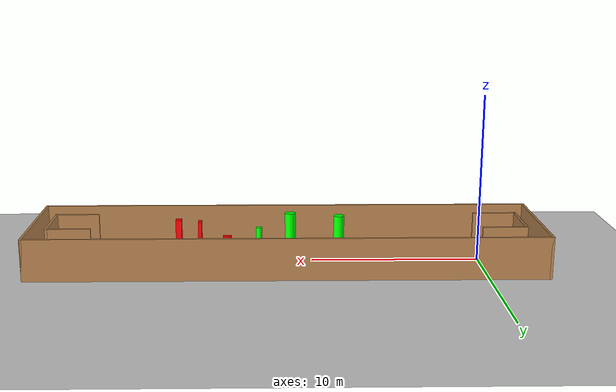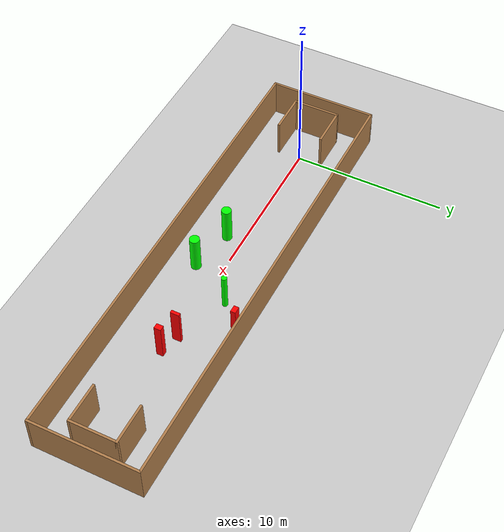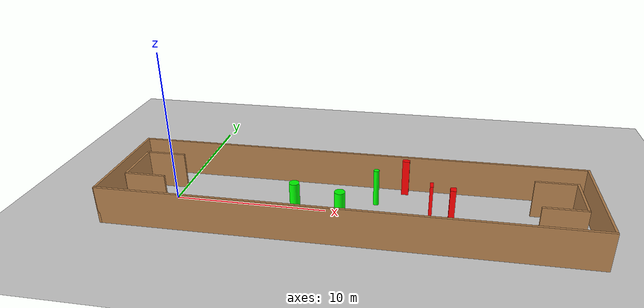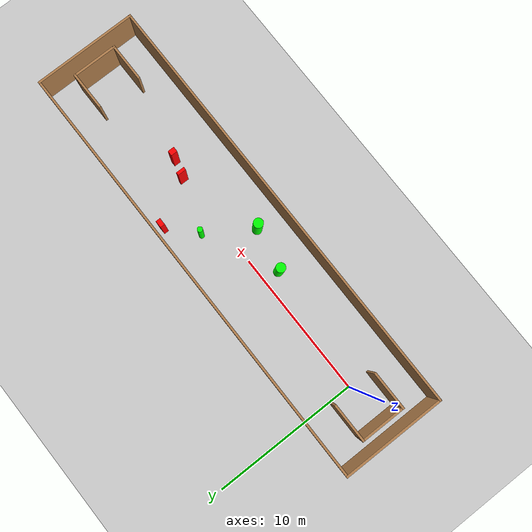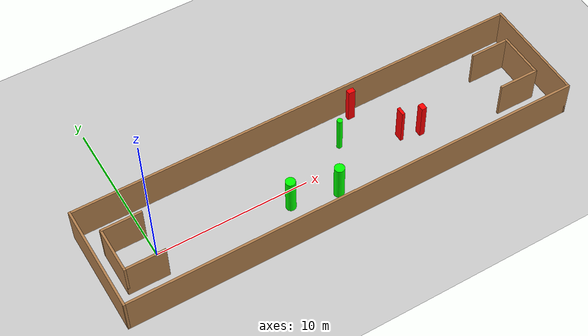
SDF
<sdf version="1.7">
 <world name="default">
  <light name="sun" type="directional">
   <pose>0 0 10 0 -0 0</pose>
   <diffuse>0.8 0.8 0.8 1</diffuse>
   <specular>0.2 0.2 0.2 1</specular>
   <attenuation>
    <range>1000</range>
    <constant>0.9</constant>
    <linear>0.01</linear>
    <quadratic>0.001</quadratic>
   </attenuation>
   <direction>-0.5 0.1 -0.9</direction>
   <spot><inner_angle>0</inner_angle><outer_angle>0</outer_angle><falloff>0</falloff></spot>
  </light>
  <model name="ground_plane">
   <static>1</static>
   <link name="link">
    <collision name="collision">
     <geometry><plane><normal>0 0 1</normal><size>100 100</size></plane></geometry>
     <surface>
      <contact><collide_bitmask>65535</collide_bitmask></contact>
      <friction><ode><mu>100</mu><mu2>50</mu2></ode></friction>
     </surface>
    </collision>
    <visual name="visual">
     <cast_shadows>0</cast_shadows>
     <geometry><plane><normal>0 0 1</normal><size>100 100</size></plane></geometry>
     <material>
      <script><uri>file://media/materials/scripts/gazebo.material</uri><name>Gazebo/Grey</name></script>
     </material>
    </visual>
   </link>
  </model>
  <gravity>0 0 -9.8</gravity>
  <magnetic_field>6e-06 2.3e-05 -4.2e-05</magnetic_field>
  <atmosphere type="adiabatic"/>
  <physics type="ode">
   <max_step_size>0.001</max_step_size>
   <real_time_factor>1</real_time_factor>
   <real_time_update_rate>1000</real_time_update_rate>
  </physics>
  <scene><ambient>0.4 0.4 0.4 1</ambient><background>0.7 0.7 0.7 1</background><shadows>1</shadows></scene>
  <spherical_coordinates>
   <surface_model>EARTH_WGS84</surface_model>
   <latitude_deg>0</latitude_deg>
   <longitude_deg>0</longitude_deg>
   <elevation>0</elevation>
   <heading_deg>0</heading_deg>
  </spherical_coordinates>
  <model name="my_base_walls">
   <link name="Wall_0">
    <collision name="Wall_0_Collision">
     <geometry><box><size>7.15 0.15 2.5</size></box></geometry>
     <pose>0 0 1.25 0 -0 0</pose>
    </collision>
    <visual name="Wall_0_Visual">
     <pose>0 0 1.25 0 -0 0</pose>
     <geometry><box><size>7.15 0.15 2.5</size></box></geometry>
     <material>
      <script><uri>file://media/materials/scripts/gazebo.material</uri><name>Gazebo/Wood</name></script>
      <ambient>1 1 1 1</ambient>
     </material>
     <meta><layer>0</layer></meta>
    </visual>
    <pose>-15 0 0 0 -0 1.5708</pose>
   </link>
   <link name="Wall_10">
    <collision name="Wall_10_Collision">
     <geometry><box><size>2.65 0.15 2.5</size></box></geometry>
     <pose>0 0 1.25 0 -0 0</pose>
    </collision>
    <visual name="Wall_10_Visual">
     <pose>0 0 1.25 0 -0 0</pose>
     <geometry><box><size>2.65 0.15 2.5</size></box></geometry>
     <material>
      <script><uri>file://media/materials/scripts/gazebo.material</uri><name>Gazebo/Wood</name></script>
      <ambient>1 1 1 1</ambient>
     </material>
     <meta><layer>0</layer></meta>
    </visual>
    <pose>-12.75 -1.5 0 0 -0 0</pose>
   </link>
   <link name="Wall_12">
    <collision name="Wall_12_Collision">
     <geometry><box><size>2.65 0.15 2.5</size></box></geometry>
     <pose>0 0 1.25 0 -0 0</pose>
    </collision>
    <visual name="Wall_12_Visual">
     <pose>0 0 1.25 0 -0 0</pose>
     <geometry><box><size>2.65 0.15 2.5</size></box></geometry>
     <material>
      <script><uri>file://media/materials/scripts/gazebo.material</uri><name>Gazebo/Wood</name></script>
      <ambient>1 1 1 1</ambient>
     </material>
     <meta><layer>0</layer></meta>
    </visual>
    <pose>-12.75 1.5 0 0 -0 0</pose>
   </link>
   <link name="Wall_14">
    <collision name="Wall_14_Collision">
     <geometry><box><size>3.15 0.15 2.5</size></box></geometry>
     <pose>0 0 1.25 0 -0 0</pose>
    </collision>
    <visual name="Wall_14_Visual">
     <pose>0 0 1.25 0 -0 0</pose>
     <geometry><box><size>3.15 0.15 2.5</size></box></geometry>
     <material>
      <script><uri>file://media/materials/scripts/gazebo.material</uri><name>Gazebo/Wood</name></script>
      <ambient>1 1 1 1</ambient>
     </material>
     <meta><layer>0</layer></meta>
    </visual>
    <pose>14 0 0 0 -0 -1.5708</pose>
   </link>
   <link name="Wall_15">
    <collision name="Wall_15_Collision">
     <geometry><box><size>2.65 0.15 2.5</size></box></geometry>
     <pose>0 0 1.25 0 -0 0</pose>
    </collision>
    <visual name="Wall_15_Visual">
     <pose>0 0 1.25 0 -0 0</pose>
     <geometry><box><size>2.65 0.15 2.5</size></box></geometry>
     <material>
      <script><uri>file://media/materials/scripts/gazebo.material</uri><name>Gazebo/Wood</name></script>
      <ambient>1 1 1 1</ambient>
     </material>
     <meta><layer>0</layer></meta>
    </visual>
    <pose>12.75 -1.5 0 0 -0 3.14159</pose>
   </link>
   <link name="Wall_17">
    <collision name="Wall_17_Collision">
     <geometry><box><size>2.65 0.15 2.5</size></box></geometry>
     <pose>0 0 1.25 0 -0 0</pose>
    </collision>
    <visual name="Wall_17_Visual">
     <pose>0 0 1.25 0 -0 0</pose>
     <geometry><box><size>2.65 0.15 2.5</size></box></geometry>
     <material>
      <script><uri>file://media/materials/scripts/gazebo.material</uri><name>Gazebo/Wood</name></script>
      <ambient>1 1 1 1</ambient>
     </material>
     <meta><layer>0</layer></meta>
    </visual>
    <pose>12.75 1.5 0 0 -0 3.14159</pose>
   </link>
   <link name="Wall_2">
    <collision name="Wall_2_Collision">
     <geometry><box><size>30.15 0.15 2.5</size></box></geometry>
     <pose>0 0 1.25 0 -0 0</pose>
    </collision>
    <visual name="Wall_2_Visual">
     <pose>0 0 1.25 0 -0 0</pose>
     <geometry><box><size>30.15 0.15 2.5</size></box></geometry>
     <material>
      <script><uri>file://media/materials/scripts/gazebo.material</uri><name>Gazebo/Wood</name></script>
      <ambient>1 1 1 1</ambient>
     </material>
     <meta><layer>0</layer></meta>
    </visual>
    <pose>-0 -3.5 0 0 -0 0</pose>
   </link>
   <link name="Wall_4">
    <collision name="Wall_4_Collision">
     <geometry><box><size>30.15 0.15 2.5</size></box></geometry>
     <pose>0 0 1.25 0 -0 0</pose>
    </collision>
    <visual name="Wall_4_Visual">
     <pose>0 0 1.25 0 -0 0</pose>
     <geometry><box><size>30.15 0.15 2.5</size></box></geometry>
     <material>
      <script><uri>file://media/materials/scripts/gazebo.material</uri><name>Gazebo/Wood</name></script>
      <ambient>1 1 1 1</ambient>
     </material>
     <meta><layer>0</layer></meta>
    </visual>
    <pose>-0 3.5 0 0 -0 0</pose>
   </link>
   <link name="Wall_6">
    <collision name="Wall_6_Collision">
     <geometry><box><size>7.15 0.15 2.5</size></box></geometry>
     <pose>0 0 1.25 0 -0 0</pose>
    </collision>
    <visual name="Wall_6_Visual">
     <pose>0 0 1.25 0 -0 0</pose>
     <geometry><box><size>7.15 0.15 2.5</size></box></geometry>
     <material>
      <script><uri>file://media/materials/scripts/gazebo.material</uri><name>Gazebo/Wood</name></script>
      <ambient>1 1 1 1</ambient>
     </material>
     <meta><layer>0</layer></meta>
    </visual>
    <pose>15 0 0 0 -0 -1.5708</pose>
   </link>
   <link name="Wall_9">
    <collision name="Wall_9_Collision">
     <geometry><box><size>3.15 0.15 2.5</size></box></geometry>
     <pose>0 0 1.25 0 -0 0</pose>
    </collision>
    <visual name="Wall_9_Visual">
     <pose>0 0 1.25 0 -0 0</pose>
     <geometry><box><size>3.15 0.15 2.5</size></box></geometry>
     <material>
      <script><uri>file://media/materials/scripts/gazebo.material</uri><name>Gazebo/Wood</name></script>
      <ambient>1 1 1 1</ambient>
     </material>
     <meta><layer>0</layer></meta>
    </visual>
    <pose>-14 0 0 0 -0 -1.5708</pose>
   </link>
   <static>1</static>
   <pose>11.5 0 0 0 -0 0</pose>
  </model>
  <model name="cylinder1">
   <static>1</static>
   <link name="link">
    <inertial>
     <mass>1</mass>
     <inertia><ixx>0.5</ixx><ixy>0</ixy><ixz>0</ixz><iyy>0.5</iyy><iyz>0</iyz><izz>1</izz></inertia>
    </inertial>
    <collision name="collision">
     <geometry><cylinder><radius>0.326107516007814</radius><length>2.5</length></cylinder></geometry>
    </collision>
    <visual name="visual">
     <geometry><cylinder><radius>0.326107516007814</radius><length>2.5</length></cylinder></geometry>
     <material>
      <ambient>0 1 0 1</ambient>
      <diffuse>0 1 0 1</diffuse>
      <specular>0.1 0.1 0.1 1</specular>
      <emissive>0 0 0 0</emissive>
     </material>
    </visual>
   </link>
   <pose>11.266517895468368 -1.6592110116439498 1.25 0 0 0</pose>
  </model>
  <model name="cylinder2">
   <static>1</static>
   <link name="link">
    <inertial>
     <mass>1</mass>
     <inertia><ixx>0.5</ixx><ixy>0</ixy><ixz>0</ixz><iyy>0.5</iyy><iyz>0</iyz><izz>1</izz></inertia>
    </inertial>
    <collision name="collision">
     <geometry><cylinder><radius>0.31757478869519834</radius><length>2.5</length></cylinder></geometry>
    </collision>
    <visual name="visual">
     <geometry><cylinder><radius>0.31757478869519834</radius><length>2.5</length></cylinder></geometry>
     <material>
      <ambient>0 1 0 1</ambient>
      <diffuse>0 1 0 1</diffuse>
      <specular>0.1 0.1 0.1 1</specular>
      <emissive>0 0 0 0</emissive>
     </material>
    </visual>
   </link>
   <pose>8.323541836509706 -1.0382484344992178 1.25 0 0 0</pose>
  </model>
  <model name="cylinder3">
   <static>1</static>
   <link name="link">
    <inertial>
     <mass>1</mass>
     <inertia><ixx>0.5</ixx><ixy>0</ixy><ixz>0</ixz><iyy>0.5</iyy><iyz>0</iyz><izz>1</izz></inertia>
    </inertial>
    <collision name="collision">
     <geometry><cylinder><radius>0.1782462449918315</radius><length>2.5</length></cylinder></geometry>
    </collision>
    <visual name="visual">
     <geometry><cylinder><radius>0.1782462449918315</radius><length>2.5</length></cylinder></geometry>
     <material>
      <ambient>0 1 0 1</ambient>
      <diffuse>0 1 0 1</diffuse>
      <specular>0.1 0.1 0.1 1</specular>
      <emissive>0 0 0 0</emissive>
     </material>
    </visual>
   </link>
   <pose>13.134812013131233 1.3431251764115855 1.25 0 0 0</pose>
  </model>
  <model name="box1">
   <static>1</static>
   <link name="link">
    <inertial>
     <mass>1</mass>
     <inertia><ixx>0.083</ixx><ixy>0</ixy><ixz>0</ixz><iyy>0.083</iyy><iyz>0</iyz><izz>0.083</izz></inertia>
    </inertial>
    <collision name="collision">
     <geometry><box><size>0.20265998811577934 0.5771332723248987 2.5</size></box></geometry>
    </collision>
    <visual name="visual">
     <geometry><box><size>0.20265998811577934 0.5771332723248987 2.5</size></box></geometry>
     <material>
      <ambient>1 0 0 1</ambient>
      <diffuse>1 0 0 1</diffuse>
      <specular>0.1 0.1 0.1 1</specular>
      <emissive>0 0 0 0</emissive>
     </material>
    </visual>
    <sensor name="my_contact" type="contact">
     <contact><collision>box_collision</collision><topic>__default_topic__</topic></contact>
    </sensor>
   </link>
   <pose>16.66717207452686 0.055785176964987304 1.25 0 0 0</pose>
  </model>
  <model name="box2">
   <static>1</static>
   <link name="link">
    <inertial>
     <mass>1</mass>
     <inertia><ixx>0.083</ixx><ixy>0</ixy><ixz>0</ixz><iyy>0.083</iyy><iyz>0</iyz><izz>0.083</izz></inertia>
    </inertial>
    <collision name="collision">
     <geometry><box><size>0.3504186657513135 0.44449235093982925 2.5</size></box></geometry>
    </collision>
    <visual name="visual">
     <geometry><box><size>0.3504186657513135 0.44449235093982925 2.5</size></box></geometry>
     <material>
      <ambient>1 0 0 1</ambient>
      <diffuse>1 0 0 1</diffuse>
      <specular>0.1 0.1 0.1 1</specular>
      <emissive>0 0 0 0</emissive>
     </material>
    </visual>
    <sensor name="my_contact" type="contact">
     <contact><collision>box_collision</collision><topic>__default_topic__</topic></contact>
    </sensor>
   </link>
   <pose>17.961328228394812 -0.29640251696706343 1.25 0 0 0</pose>
  </model>
  <model name="box3">
   <static>1</static>
   <link name="link">
    <inertial>
     <mass>1</mass>
     <inertia><ixx>0.083</ixx><ixy>0</ixy><ixz>0</ixz><iyy>0.083</iyy><iyz>0</iyz><izz>0.083</izz></inertia>
    </inertial>
    <collision name="collision">
     <geometry><box><size>0.4654011928720989 0.3199702148635491 2.5</size></box></geometry>
    </collision>
    <visual name="visual">
     <geometry><box><size>0.4654011928720989 0.3199702148635491 2.5</size></box></geometry>
     <material>
      <ambient>1 0 0 1</ambient>
      <diffuse>1 0 0 1</diffuse>
      <specular>0.1 0.1 0.1 1</specular>
      <emissive>0 0 0 0</emissive>
     </material>
    </visual>
    <sensor name="my_contact" type="contact">
     <contact><collision>box_collision</collision><topic>__default_topic__</topic></contact>
    </sensor>
   </link>
   <pose>14.919373106744114 2.974481455325943 1.25 0 0 0</pose>
  </model>
 </world>
</sdf>
